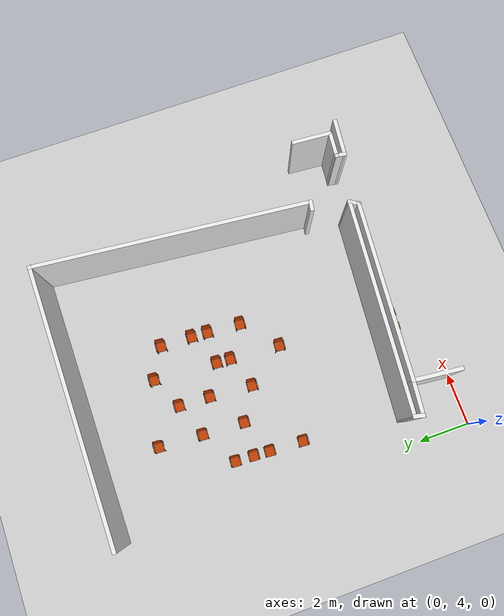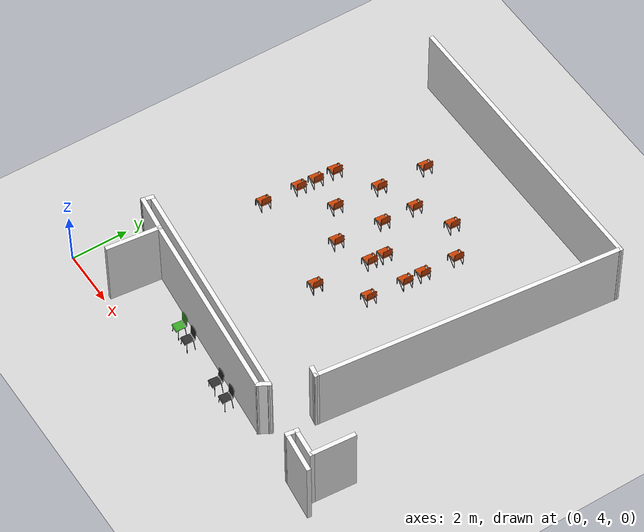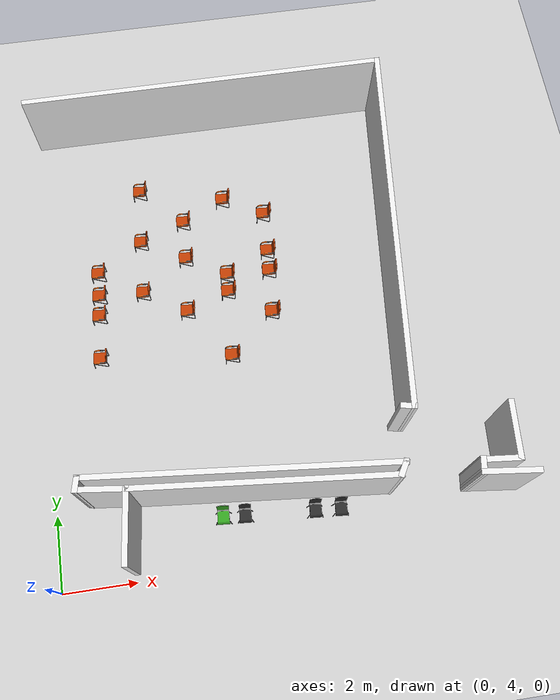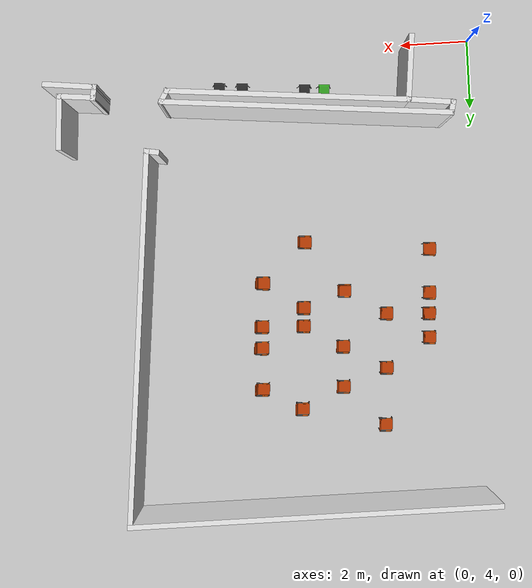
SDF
<sdf version="1.6">
 <world name="default">
  <model name="ground_plane">
   <static>1</static>
   <link name="link">
    <collision name="collision">
     <geometry><plane><normal>0 0 1</normal><size>100 100</size></plane></geometry>
     <surface><friction><ode><mu>100</mu><mu2>50</mu2></ode></friction></surface>
    </collision>
    <visual name="visual">
     <cast_shadows>0</cast_shadows>
     <geometry><plane><normal>0 0 1</normal><size>100 100</size></plane></geometry>
     <material>
      <script><uri>file://media/materials/scripts/gazebo.material</uri><name>Gazebo/Grey</name></script>
     </material>
    </visual>
   </link>
  </model>
  <model name="ucu_basic_frame.world">
   <link name="Wall_264">
    <pose>0.222214 2.68141 0 0 0 -1.79253</pose>
    <visual name="Wall_264_Visual">
     <pose>0 0 1.25 0 -0 0</pose>
     <geometry><box><size>0.445131 0.15 2.5</size></box></geometry>
     <material>
      <script><uri>file://media/materials/scripts/gazebo.material</uri><name>Gazebo/White</name></script>
      <ambient>1 1 1 1</ambient>
      <diffuse>1 1 1 1</diffuse>
      <specular>0 0 0 1</specular>
      <emissive>0 0 0 1</emissive>
     </material>
     <meta><layer>0</layer></meta>
    </visual>
    <collision name="Wall_264_Collision">
     <pose>0 0 1.25 0 -0 0</pose>
     <geometry><box><size>0.445131 0.15 2.5</size></box></geometry>
     <surface>
      <friction>
       <ode><mu>1</mu><mu2>1</mu2><fdir1>0 0 0</fdir1><slip1>0</slip1><slip2>0</slip2></ode>
       <torsional>
        <coefficient>1</coefficient>
        <patch_radius>0</patch_radius>
        <surface_radius>0</surface_radius>
        <use_patch_radius>1</use_patch_radius>
        <ode><slip>0</slip></ode>
       </torsional>
      </friction>
      <bounce><restitution_coefficient>0</restitution_coefficient><threshold>1e+06</threshold></bounce>
      <contact>
       <collide_without_contact>0</collide_without_contact>
       <collide_without_contact_bitmask>1</collide_without_contact_bitmask>
       <collide_bitmask>1</collide_bitmask>
       <ode>
        <soft_cfm>0</soft_cfm>
        <soft_erp>0.2</soft_erp>
        <kp>1e+13</kp>
        <kd>1</kd>
        <max_vel>0.01</max_vel>
        <min_depth>0</min_depth>
       </ode>
       <bullet>
        <split_impulse>1</split_impulse>
        <split_impulse_penetration_threshold>-0.01</split_impulse_penetration_threshold>
        <soft_cfm>0</soft_cfm>
        <soft_erp>0.2</soft_erp>
        <kp>1e+13</kp>
        <kd>1</kd>
       </bullet>
      </contact>
     </surface>
    </collision>
   </link>
   <link name="Wall_265">
    <pose>0.817825 2.46551 0 0 0 -0.1169</pose>
    <inertial>
     <mass>1</mass>
     <inertia><ixx>1</ixx><ixy>0</ixy><ixz>0</ixz><iyy>1</iyy><iyz>0</iyz><izz>1</izz></inertia>
    </inertial>
    <visual name="Wall_265_Visual">
     <pose>0 0 1.25 0 -0 0</pose>
     <geometry><box><size>1.38367 0.15 2.5</size></box></geometry>
     <material>
      <script><uri>file://media/materials/scripts/gazebo.material</uri><name>Gazebo/White</name></script>
      <ambient>1 1 1 1</ambient>
      <diffuse>1 1 1 1</diffuse>
      <specular>0 0 0 1</specular>
      <emissive>0 0 0 1</emissive>
      <shader type="vertex"><normal_map>__default__</normal_map></shader>
     </material>
     <meta><layer>0</layer></meta>
    </visual>
    <collision name="Wall_265_Collision">
     <pose>0 0 1.25 0 -0 0</pose>
     <geometry><box><size>1.38367 0.15 2.5</size></box></geometry>
     <surface>
      <friction>
       <ode><mu>1</mu><mu2>1</mu2><fdir1>0 0 0</fdir1><slip1>0</slip1><slip2>0</slip2></ode>
       <torsional>
        <coefficient>1</coefficient>
        <patch_radius>0</patch_radius>
        <surface_radius>0</surface_radius>
        <use_patch_radius>1</use_patch_radius>
        <ode><slip>0</slip></ode>
       </torsional>
      </friction>
      <bounce><restitution_coefficient>0</restitution_coefficient><threshold>1e+06</threshold></bounce>
      <contact>
       <collide_without_contact>0</collide_without_contact>
       <collide_without_contact_bitmask>1</collide_without_contact_bitmask>
       <collide_bitmask>1</collide_bitmask>
       <ode>
        <soft_cfm>0</soft_cfm>
        <soft_erp>0.2</soft_erp>
        <kp>1e+13</kp>
        <kd>1</kd>
        <max_vel>0.01</max_vel>
        <min_depth>0</min_depth>
       </ode>
       <bullet>
        <split_impulse>1</split_impulse>
        <split_impulse_penetration_threshold>-0.01</split_impulse_penetration_threshold>
        <soft_cfm>0</soft_cfm>
        <soft_erp>0.2</soft_erp>
        <kp>1e+13</kp>
        <kd>1</kd>
       </bullet>
      </contact>
     </surface>
    </collision>
   </link>
   <link name="Wall_267">
    <pose>4.30052 2.44738 0 0 0 -0.093156</pose>
    <visual name="Wall_267_Visual">
     <pose>0 0 1.25 0 -0 0</pose>
     <geometry><box><size>8.27695 0.15 2.5</size></box></geometry>
     <material>
      <script><uri>file://media/materials/scripts/gazebo.material</uri><name>Gazebo/White</name></script>
      <ambient>1 1 1 1</ambient>
      <diffuse>1 1 1 1</diffuse>
      <specular>0 0 0 1</specular>
      <emissive>0 0 0 1</emissive>
     </material>
     <meta><layer>0</layer></meta>
    </visual>
    <collision name="Wall_267_Collision">
     <pose>0 0 1.25 0 -0 0</pose>
     <geometry><box><size>8.27695 0.15 2.5</size></box></geometry>
     <surface>
      <friction>
       <ode><mu>1</mu><mu2>1</mu2><fdir1>0 0 0</fdir1><slip1>0</slip1><slip2>0</slip2></ode>
       <torsional>
        <coefficient>1</coefficient>
        <patch_radius>0</patch_radius>
        <surface_radius>0</surface_radius>
        <use_patch_radius>1</use_patch_radius>
        <ode><slip>0</slip></ode>
       </torsional>
      </friction>
      <bounce><restitution_coefficient>0</restitution_coefficient><threshold>1e+06</threshold></bounce>
      <contact>
       <collide_without_contact>0</collide_without_contact>
       <collide_without_contact_bitmask>1</collide_without_contact_bitmask>
       <collide_bitmask>1</collide_bitmask>
       <ode>
        <soft_cfm>0</soft_cfm>
        <soft_erp>0.2</soft_erp>
        <kp>1e+13</kp>
        <kd>1</kd>
        <max_vel>0.01</max_vel>
        <min_depth>0</min_depth>
       </ode>
       <bullet>
        <split_impulse>1</split_impulse>
        <split_impulse_penetration_threshold>-0.01</split_impulse_penetration_threshold>
        <soft_cfm>0</soft_cfm>
        <soft_erp>0.2</soft_erp>
        <kp>1e+13</kp>
        <kd>1</kd>
       </bullet>
      </contact>
     </surface>
    </collision>
   </link>
   <link name="Wall_268">
    <pose>8.26147 1.92273 0 0 0 -2.09559</pose>
    <visual name="Wall_268_Visual">
     <pose>0 0 1.25 0 -0 0</pose>
     <geometry><box><size>0.488919 0.15 2.5</size></box></geometry>
     <material>
      <script><uri>file://media/materials/scripts/gazebo.material</uri><name>Gazebo/White</name></script>
      <ambient>1 1 1 1</ambient>
      <diffuse>1 1 1 1</diffuse>
      <specular>0 0 0 1</specular>
      <emissive>0 0 0 1</emissive>
     </material>
     <meta><layer>0</layer></meta>
    </visual>
    <collision name="Wall_268_Collision">
     <pose>0 0 1.25 0 -0 0</pose>
     <geometry><box><size>0.488919 0.15 2.5</size></box></geometry>
     <surface>
      <friction>
       <ode><mu>1</mu><mu2>1</mu2><fdir1>0 0 0</fdir1><slip1>0</slip1><slip2>0</slip2></ode>
       <torsional>
        <coefficient>1</coefficient>
        <patch_radius>0</patch_radius>
        <surface_radius>0</surface_radius>
        <use_patch_radius>1</use_patch_radius>
        <ode><slip>0</slip></ode>
       </torsional>
      </friction>
      <bounce><restitution_coefficient>0</restitution_coefficient><threshold>1e+06</threshold></bounce>
      <contact>
       <collide_without_contact>0</collide_without_contact>
       <collide_without_contact_bitmask>1</collide_without_contact_bitmask>
       <collide_bitmask>1</collide_bitmask>
       <ode>
        <soft_cfm>0</soft_cfm>
        <soft_erp>0.2</soft_erp>
        <kp>1e+13</kp>
        <kd>1</kd>
        <max_vel>0.01</max_vel>
        <min_depth>0</min_depth>
       </ode>
       <bullet>
        <split_impulse>1</split_impulse>
        <split_impulse_penetration_threshold>-0.01</split_impulse_penetration_threshold>
        <soft_cfm>0</soft_cfm>
        <soft_erp>0.2</soft_erp>
        <kp>1e+13</kp>
        <kd>1</kd>
       </bullet>
      </contact>
     </surface>
    </collision>
   </link>
   <link name="Wall_269">
    <pose>4.80351 2.08482 0 0 -0 3.05031</pose>
    <visual name="Wall_269_Visual">
     <pose>0 0 1.25 0 -0 0</pose>
     <geometry><box><size>6.92432 0.15 2.5</size></box></geometry>
     <material>
      <script><uri>file://media/materials/scripts/gazebo.material</uri><name>Gazebo/White</name></script>
      <ambient>1 1 1 1</ambient>
      <diffuse>1 1 1 1</diffuse>
      <specular>0 0 0 1</specular>
      <emissive>0 0 0 1</emissive>
     </material>
     <meta><layer>0</layer></meta>
    </visual>
    <collision name="Wall_269_Collision">
     <pose>0 0 1.25 0 -0 0</pose>
     <geometry><box><size>6.92432 0.15 2.5</size></box></geometry>
     <surface>
      <friction>
       <ode><mu>1</mu><mu2>1</mu2><fdir1>0 0 0</fdir1><slip1>0</slip1><slip2>0</slip2></ode>
       <torsional>
        <coefficient>1</coefficient>
        <patch_radius>0</patch_radius>
        <surface_radius>0</surface_radius>
        <use_patch_radius>1</use_patch_radius>
        <ode><slip>0</slip></ode>
       </torsional>
      </friction>
      <bounce><restitution_coefficient>0</restitution_coefficient><threshold>1e+06</threshold></bounce>
      <contact>
       <collide_without_contact>0</collide_without_contact>
       <collide_without_contact_bitmask>1</collide_without_contact_bitmask>
       <collide_bitmask>1</collide_bitmask>
       <ode>
        <soft_cfm>0</soft_cfm>
        <soft_erp>0.2</soft_erp>
        <kp>1e+13</kp>
        <kd>1</kd>
        <max_vel>0.01</max_vel>
        <min_depth>0</min_depth>
       </ode>
       <bullet>
        <split_impulse>1</split_impulse>
        <split_impulse_penetration_threshold>-0.01</split_impulse_penetration_threshold>
        <soft_cfm>0</soft_cfm>
        <soft_erp>0.2</soft_erp>
        <kp>1e+13</kp>
        <kd>1</kd>
       </bullet>
      </contact>
     </surface>
    </collision>
   </link>
   <link name="Wall_272">
    <pose>1.33783 1.51364 0 0 0 -1.67567</pose>
    <visual name="Wall_272_Visual">
     <pose>0 0 1.25 0 -0 0</pose>
     <geometry><box><size>1.91958 0.15 2.5</size></box></geometry>
     <material>
      <script><uri>file://media/materials/scripts/gazebo.material</uri><name>Gazebo/White</name></script>
      <ambient>1 1 1 1</ambient>
      <diffuse>1 1 1 1</diffuse>
      <specular>0 0 0 1</specular>
      <emissive>0 0 0 1</emissive>
     </material>
     <meta><layer>0</layer></meta>
    </visual>
    <collision name="Wall_272_Collision">
     <pose>0 0 1.25 0 -0 0</pose>
     <geometry><box><size>1.91958 0.15 2.5</size></box></geometry>
     <surface>
      <friction>
       <ode><mu>1</mu><mu2>1</mu2><fdir1>0 0 0</fdir1><slip1>0</slip1><slip2>0</slip2></ode>
       <torsional>
        <coefficient>1</coefficient>
        <patch_radius>0</patch_radius>
        <surface_radius>0</surface_radius>
        <use_patch_radius>1</use_patch_radius>
        <ode><slip>0</slip></ode>
       </torsional>
      </friction>
      <bounce><restitution_coefficient>0</restitution_coefficient><threshold>1e+06</threshold></bounce>
      <contact>
       <collide_without_contact>0</collide_without_contact>
       <collide_without_contact_bitmask>1</collide_without_contact_bitmask>
       <collide_bitmask>1</collide_bitmask>
       <ode>
        <soft_cfm>0</soft_cfm>
        <soft_erp>0.2</soft_erp>
        <kp>1e+13</kp>
        <kd>1</kd>
        <max_vel>0.01</max_vel>
        <min_depth>0</min_depth>
       </ode>
       <bullet>
        <split_impulse>1</split_impulse>
        <split_impulse_penetration_threshold>-0.01</split_impulse_penetration_threshold>
        <soft_cfm>0</soft_cfm>
        <soft_erp>0.2</soft_erp>
        <kp>1e+13</kp>
        <kd>1</kd>
       </bullet>
      </contact>
     </surface>
    </collision>
   </link>
   <link name="Wall_309">
    <pose>10.8836 1.47565 0 0 -0 3.03093</pose>
    <visual name="Wall_309_Visual">
     <pose>0 0 1.25 0 -0 0</pose>
     <geometry><box><size>1.52674 0.15 2.5</size></box></geometry>
     <material>
      <script><uri>file://media/materials/scripts/gazebo.material</uri><name>Gazebo/White</name></script>
      <ambient>1 1 1 1</ambient>
      <diffuse>1 1 1 1</diffuse>
      <specular>0 0 0 1</specular>
      <emissive>0 0 0 1</emissive>
     </material>
     <meta><layer>0</layer></meta>
    </visual>
    <collision name="Wall_309_Collision">
     <pose>0 0 1.25 0 -0 0</pose>
     <geometry><box><size>1.52674 0.15 2.5</size></box></geometry>
     <surface>
      <friction>
       <ode><mu>1</mu><mu2>1</mu2><fdir1>0 0 0</fdir1><slip1>0</slip1><slip2>0</slip2></ode>
       <torsional>
        <coefficient>1</coefficient>
        <patch_radius>0</patch_radius>
        <surface_radius>0</surface_radius>
        <use_patch_radius>1</use_patch_radius>
        <ode><slip>0</slip></ode>
       </torsional>
      </friction>
      <bounce><restitution_coefficient>0</restitution_coefficient><threshold>1e+06</threshold></bounce>
      <contact>
       <collide_without_contact>0</collide_without_contact>
       <collide_without_contact_bitmask>1</collide_without_contact_bitmask>
       <collide_bitmask>1</collide_bitmask>
       <ode>
        <soft_cfm>0</soft_cfm>
        <soft_erp>0.2</soft_erp>
        <kp>1e+13</kp>
        <kd>1</kd>
        <max_vel>0.01</max_vel>
        <min_depth>0</min_depth>
       </ode>
       <bullet>
        <split_impulse>1</split_impulse>
        <split_impulse_penetration_threshold>-0.01</split_impulse_penetration_threshold>
        <soft_cfm>0</soft_cfm>
        <soft_erp>0.2</soft_erp>
        <kp>1e+13</kp>
        <kd>1</kd>
       </bullet>
      </contact>
     </surface>
    </collision>
   </link>
   <link name="Wall_310">
    <pose>10.2225 1.70746 0 0 -0 1.42134</pose>
    <visual name="Wall_310_Visual">
     <pose>0 0 1.25 0 -0 0</pose>
     <geometry><box><size>0.465001 0.15 2.5</size></box></geometry>
     <material>
      <script><uri>file://media/materials/scripts/gazebo.material</uri><name>Gazebo/White</name></script>
      <ambient>1 1 1 1</ambient>
      <diffuse>1 1 1 1</diffuse>
      <specular>0 0 0 1</specular>
      <emissive>0 0 0 1</emissive>
     </material>
     <meta><layer>0</layer></meta>
    </visual>
    <collision name="Wall_310_Collision">
     <pose>0 0 1.25 0 -0 0</pose>
     <geometry><box><size>0.465001 0.15 2.5</size></box></geometry>
     <surface>
      <friction>
       <ode><mu>1</mu><mu2>1</mu2><fdir1>0 0 0</fdir1><slip1>0</slip1><slip2>0</slip2></ode>
       <torsional>
        <coefficient>1</coefficient>
        <patch_radius>0</patch_radius>
        <surface_radius>0</surface_radius>
        <use_patch_radius>1</use_patch_radius>
        <ode><slip>0</slip></ode>
       </torsional>
      </friction>
      <bounce><restitution_coefficient>0</restitution_coefficient><threshold>1e+06</threshold></bounce>
      <contact>
       <collide_without_contact>0</collide_without_contact>
       <collide_without_contact_bitmask>1</collide_without_contact_bitmask>
       <collide_bitmask>1</collide_bitmask>
       <ode>
        <soft_cfm>0</soft_cfm>
        <soft_erp>0.2</soft_erp>
        <kp>1e+13</kp>
        <kd>1</kd>
        <max_vel>0.01</max_vel>
        <min_depth>0</min_depth>
       </ode>
       <bullet>
        <split_impulse>1</split_impulse>
        <split_impulse_penetration_threshold>-0.01</split_impulse_penetration_threshold>
        <soft_cfm>0</soft_cfm>
        <soft_erp>0.2</soft_erp>
        <kp>1e+13</kp>
        <kd>1</kd>
       </bullet>
      </contact>
     </surface>
    </collision>
   </link>
   <link name="Wall_311">
    <pose>10.7146 1.80243 0 0 0 -0.093477</pose>
    <visual name="Wall_311_Visual">
     <pose>0 0 1.25 0 -0 0</pose>
     <geometry><box><size>1.0913 0.15 2.5</size></box></geometry>
     <material>
      <script><uri>file://media/materials/scripts/gazebo.material</uri><name>Gazebo/White</name></script>
      <ambient>1 1 1 1</ambient>
      <diffuse>1 1 1 1</diffuse>
      <specular>0 0 0 1</specular>
      <emissive>0 0 0 1</emissive>
     </material>
     <meta><layer>0</layer></meta>
    </visual>
    <collision name="Wall_311_Collision">
     <pose>0 0 1.25 0 -0 0</pose>
     <geometry><box><size>1.0913 0.15 2.5</size></box></geometry>
     <surface>
      <friction>
       <ode><mu>1</mu><mu2>1</mu2><fdir1>0 0 0</fdir1><slip1>0</slip1><slip2>0</slip2></ode>
       <torsional>
        <coefficient>1</coefficient>
        <patch_radius>0</patch_radius>
        <surface_radius>0</surface_radius>
        <use_patch_radius>1</use_patch_radius>
        <ode><slip>0</slip></ode>
       </torsional>
      </friction>
      <bounce><restitution_coefficient>0</restitution_coefficient><threshold>1e+06</threshold></bounce>
      <contact>
       <collide_without_contact>0</collide_without_contact>
       <collide_without_contact_bitmask>1</collide_without_contact_bitmask>
       <collide_bitmask>1</collide_bitmask>
       <ode>
        <soft_cfm>0</soft_cfm>
        <soft_erp>0.2</soft_erp>
        <kp>1e+13</kp>
        <kd>1</kd>
        <max_vel>0.01</max_vel>
        <min_depth>0</min_depth>
       </ode>
       <bullet>
        <split_impulse>1</split_impulse>
        <split_impulse_penetration_threshold>-0.01</split_impulse_penetration_threshold>
        <soft_cfm>0</soft_cfm>
        <soft_erp>0.2</soft_erp>
        <kp>1e+13</kp>
        <kd>1</kd>
       </bullet>
      </contact>
     </surface>
    </collision>
   </link>
   <link name="Wall_313">
    <pose>11.2333 2.47933 0 0 -0 1.49967</pose>
    <visual name="Wall_313_Visual">
     <pose>0 0 1.25 0 -0 0</pose>
     <geometry><box><size>1.56155 0.15 2.5</size></box></geometry>
     <material>
      <script><uri>file://media/materials/scripts/gazebo.material</uri><name>Gazebo/White</name></script>
      <ambient>1 1 1 1</ambient>
      <diffuse>1 1 1 1</diffuse>
      <specular>0 0 0 1</specular>
      <emissive>0 0 0 1</emissive>
     </material>
     <meta><layer>0</layer></meta>
    </visual>
    <collision name="Wall_313_Collision">
     <pose>0 0 1.25 0 -0 0</pose>
     <geometry><box><size>1.56155 0.15 2.5</size></box></geometry>
     <surface>
      <friction>
       <ode><mu>1</mu><mu2>1</mu2><fdir1>0 0 0</fdir1><slip1>0</slip1><slip2>0</slip2></ode>
       <torsional>
        <coefficient>1</coefficient>
        <patch_radius>0</patch_radius>
        <surface_radius>0</surface_radius>
        <use_patch_radius>1</use_patch_radius>
        <ode><slip>0</slip></ode>
       </torsional>
      </friction>
      <bounce><restitution_coefficient>0</restitution_coefficient><threshold>1e+06</threshold></bounce>
      <contact>
       <collide_without_contact>0</collide_without_contact>
       <collide_without_contact_bitmask>1</collide_without_contact_bitmask>
       <collide_bitmask>1</collide_bitmask>
       <ode>
        <soft_cfm>0</soft_cfm>
        <soft_erp>0.2</soft_erp>
        <kp>1e+13</kp>
        <kd>1</kd>
        <max_vel>0.01</max_vel>
        <min_depth>0</min_depth>
       </ode>
       <bullet>
        <split_impulse>1</split_impulse>
        <split_impulse_penetration_threshold>-0.01</split_impulse_penetration_threshold>
        <soft_cfm>0</soft_cfm>
        <soft_erp>0.2</soft_erp>
        <kp>1e+13</kp>
        <kd>1</kd>
       </bullet>
      </contact>
     </surface>
    </collision>
   </link>
   <link name="Wall_320">
    <pose>4.68498 13.9093 0 0 -0 0.000568</pose>
    <visual name="Wall_320_Visual">
     <pose>0 0 1.25 0 -0 0</pose>
     <geometry><box><size>10.5597 0.15 2.5</size></box></geometry>
     <material>
      <script><uri>file://media/materials/scripts/gazebo.material</uri><name>Gazebo/White</name></script>
      <ambient>1 1 1 1</ambient>
      <diffuse>1 1 1 1</diffuse>
      <specular>0 0 0 1</specular>
      <emissive>0 0 0 1</emissive>
     </material>
     <meta><layer>0</layer></meta>
    </visual>
    <collision name="Wall_320_Collision">
     <pose>0 0 1.25 0 -0 0</pose>
     <geometry><box><size>10.5597 0.15 2.5</size></box></geometry>
     <surface>
      <friction>
       <ode><mu>1</mu><mu2>1</mu2><fdir1>0 0 0</fdir1><slip1>0</slip1><slip2>0</slip2></ode>
       <torsional>
        <coefficient>1</coefficient>
        <patch_radius>0</patch_radius>
        <surface_radius>0</surface_radius>
        <use_patch_radius>1</use_patch_radius>
        <ode><slip>0</slip></ode>
       </torsional>
      </friction>
      <bounce><restitution_coefficient>0</restitution_coefficient><threshold>1e+06</threshold></bounce>
      <contact>
       <collide_without_contact>0</collide_without_contact>
       <collide_without_contact_bitmask>1</collide_without_contact_bitmask>
       <collide_bitmask>1</collide_bitmask>
       <ode>
        <soft_cfm>0</soft_cfm>
        <soft_erp>0.2</soft_erp>
        <kp>1e+13</kp>
        <kd>1</kd>
        <max_vel>0.01</max_vel>
        <min_depth>0</min_depth>
       </ode>
       <bullet>
        <split_impulse>1</split_impulse>
        <split_impulse_penetration_threshold>-0.01</split_impulse_penetration_threshold>
        <soft_cfm>0</soft_cfm>
        <soft_erp>0.2</soft_erp>
        <kp>1e+13</kp>
        <kd>1</kd>
       </bullet>
      </contact>
     </surface>
    </collision>
   </link>
   <link name="Wall_323">
    <pose>8.69612 3.45178 0 0 0 -0.166846</pose>
    <visual name="Wall_323_Visual">
     <pose>0 0 1.25 0 -0 0</pose>
     <geometry><box><size>0.432266 0.15 2.5</size></box></geometry>
     <material>
      <script><uri>file://media/materials/scripts/gazebo.material</uri><name>Gazebo/White</name></script>
      <ambient>1 1 1 1</ambient>
      <diffuse>1 1 1 1</diffuse>
      <specular>0 0 0 1</specular>
      <emissive>0 0 0 1</emissive>
     </material>
     <meta><layer>0</layer></meta>
    </visual>
    <collision name="Wall_323_Collision">
     <pose>0 0 1.25 0 -0 0</pose>
     <geometry><box><size>0.432266 0.15 2.5</size></box></geometry>
     <surface>
      <friction>
       <ode><mu>1</mu><mu2>1</mu2><fdir1>0 0 0</fdir1><slip1>0</slip1><slip2>0</slip2></ode>
       <torsional>
        <coefficient>1</coefficient>
        <patch_radius>0</patch_radius>
        <surface_radius>0</surface_radius>
        <use_patch_radius>1</use_patch_radius>
        <ode><slip>0</slip></ode>
       </torsional>
      </friction>
      <bounce><restitution_coefficient>0</restitution_coefficient><threshold>1e+06</threshold></bounce>
      <contact>
       <collide_without_contact>0</collide_without_contact>
       <collide_without_contact_bitmask>1</collide_without_contact_bitmask>
       <collide_bitmask>1</collide_bitmask>
       <ode>
        <soft_cfm>0</soft_cfm>
        <soft_erp>0.2</soft_erp>
        <kp>1e+13</kp>
        <kd>1</kd>
        <max_vel>0.01</max_vel>
        <min_depth>0</min_depth>
       </ode>
       <bullet>
        <split_impulse>1</split_impulse>
        <split_impulse_penetration_threshold>-0.01</split_impulse_penetration_threshold>
        <soft_cfm>0</soft_cfm>
        <soft_erp>0.2</soft_erp>
        <kp>1e+13</kp>
        <kd>1</kd>
       </bullet>
      </contact>
     </surface>
    </collision>
   </link>
   <link name="Wall_326">
    <pose>9.36257 8.67029 0 0 0 -1.67105</pose>
    <visual name="Wall_326_Visual">
     <pose>0 0 1.25 0 -0 0</pose>
     <geometry><box><size>10.6868 0.15 2.5</size></box></geometry>
     <material>
      <script><uri>file://media/materials/scripts/gazebo.material</uri><name>Gazebo/White</name></script>
      <ambient>1 1 1 1</ambient>
      <diffuse>1 1 1 1</diffuse>
      <specular>0 0 0 1</specular>
      <emissive>0 0 0 1</emissive>
     </material>
     <meta><layer>0</layer></meta>
    </visual>
    <collision name="Wall_326_Collision">
     <pose>0 0 1.25 0 -0 0</pose>
     <geometry><box><size>10.6868 0.15 2.5</size></box></geometry>
     <surface>
      <friction>
       <ode><mu>1</mu><mu2>1</mu2><fdir1>0 0 0</fdir1><slip1>0</slip1><slip2>0</slip2></ode>
       <torsional>
        <coefficient>1</coefficient>
        <patch_radius>0</patch_radius>
        <surface_radius>0</surface_radius>
        <use_patch_radius>1</use_patch_radius>
        <ode><slip>0</slip></ode>
       </torsional>
      </friction>
      <bounce><restitution_coefficient>0</restitution_coefficient><threshold>1e+06</threshold></bounce>
      <contact>
       <collide_without_contact>0</collide_without_contact>
       <collide_without_contact_bitmask>1</collide_without_contact_bitmask>
       <collide_bitmask>1</collide_bitmask>
       <ode>
        <soft_cfm>0</soft_cfm>
        <soft_erp>0.2</soft_erp>
        <kp>1e+13</kp>
        <kd>1</kd>
        <max_vel>0.01</max_vel>
        <min_depth>0</min_depth>
       </ode>
       <bullet>
        <split_impulse>1</split_impulse>
        <split_impulse_penetration_threshold>-0.01</split_impulse_penetration_threshold>
        <soft_cfm>0</soft_cfm>
        <soft_erp>0.2</soft_erp>
        <kp>1e+13</kp>
        <kd>1</kd>
       </bullet>
      </contact>
     </surface>
    </collision>
   </link>
   <static>1</static>
   <pose>0.7577 3.6363 0 0 -0 0</pose>
  </model>
  <model name="classroom_chair_015_1_2">
   <pose>4.42007 5.31996 0.445359 1.3e-05 0.000121 -0.070166</pose>
   <static>0</static>
   <link name="model_body">
    <visual name="visual">
     <geometry>
      <mesh>
       <uri>model://robert_gazebo/meshes/classroom_chair_green_visual.dae</uri>
       <scale>100 100 100</scale>
      </mesh>
     </geometry>
    </visual>
    <collision name="collision">
     <geometry>
      <mesh><uri>model://robert_gazebo/meshes/classroom_chair_collision.dae</uri><scale>1 1 1</scale></mesh>
     </geometry>
    </collision>
    <inertial>
     <inertia><ixx>0.34</ixx><ixy>0</ixy><ixz>0</ixz><iyy>0.34</iyy><iyz>0</iyz><izz>0.18</izz></inertia>
     <mass>5</mass>
    </inertial>
   </link>
  </model>
  <model name="classroom_chair_015_1_3">
   <pose>5.00007 5.27998 0.445361 7e-06 0.000128 -0.070095</pose>
   <static>0</static>
   <link name="model_body">
    <visual name="visual">
     <geometry>
      <mesh><uri>model://robert_gazebo/meshes/classroom_chair_grey_visual.dae</uri><scale>100 100 100</scale></mesh>
     </geometry>
    </visual>
    <collision name="collision">
     <geometry>
      <mesh><uri>model://robert_gazebo/meshes/classroom_chair_collision.dae</uri><scale>1 1 1</scale></mesh>
     </geometry>
    </collision>
    <inertial>
     <inertia><ixx>0.34</ixx><ixy>0</ixy><ixz>0</ixz><iyy>0.34</iyy><iyz>0</iyz><izz>0.18</izz></inertia>
     <mass>5</mass>
    </inertial>
   </link>
  </model>
  <model name="classroom_chair_015_2_1">
   <pose>6.86008 5.14996 0.445361 7e-06 0.000129 -0.070169</pose>
   <static>0</static>
   <link name="model_body">
    <visual name="visual">
     <geometry>
      <mesh><uri>model://robert_gazebo/meshes/classroom_chair_grey_visual.dae</uri><scale>100 100 100</scale></mesh>
     </geometry>
    </visual>
    <collision name="collision">
     <geometry>
      <mesh><uri>model://robert_gazebo/meshes/classroom_chair_collision.dae</uri><scale>1 1 1</scale></mesh>
     </geometry>
    </collision>
    <inertial>
     <inertia><ixx>0.34</ixx><ixy>0</ixy><ixz>0</ixz><iyy>0.34</iyy><iyz>0</iyz><izz>0.18</izz></inertia>
     <mass>5</mass>
    </inertial>
   </link>
  </model>
  <model name="classroom_chair_015_2_2">
   <pose>7.54008 5.09996 0.445361 7e-06 0.000129 -0.070169</pose>
   <static>0</static>
   <link name="model_body">
    <visual name="visual">
     <geometry>
      <mesh><uri>model://robert_gazebo/meshes/classroom_chair_grey_visual.dae</uri><scale>100 100 100</scale></mesh>
     </geometry>
    </visual>
    <collision name="collision">
     <geometry>
      <mesh><uri>model://robert_gazebo/meshes/classroom_chair_collision.dae</uri><scale>1 1 1</scale></mesh>
     </geometry>
    </collision>
    <inertial>
     <inertia><ixx>0.34</ixx><ixy>0</ixy><ixz>0</ixz><iyy>0.34</iyy><iyz>0</iyz><izz>0.18</izz></inertia>
     <mass>5</mass>
    </inertial>
   </link>
  </model>
  <model name="lect_chair_orange_clone_2">
   <pose>1.58355 10.2041 0.37783 0.000123 -0.00123 3.07086</pose>
   <static>0</static>
   <link name="model_body">
    <visual name="visual">
     <geometry>
      <mesh><uri>model://robert_gazebo/meshes/lectorium_chair_visual_orange.dae</uri><scale>1 1 1</scale></mesh>
     </geometry>
    </visual>
    <collision name="collision">
     <geometry>
      <mesh><uri>model://robert_gazebo/meshes/lectorium_chair_collision.dae</uri><scale>1 1 1</scale></mesh>
     </geometry>
    </collision>
    <inertial>
     <inertia><ixx>0.53</ixx><ixy>0</ixy><ixz>0</ixz><iyy>0.54</iyy><iyz>0</iyz><izz>0.28</izz></inertia>
     <mass>8</mass>
    </inertial>
   </link>
  </model>
  <model name="lect_chair_orange_clone_3">
   <pose>1.65327 11.5083 0.37783 0.000123 -0.00123 3.07086</pose>
   <static>0</static>
   <link name="model_body">
    <visual name="visual">
     <geometry>
      <mesh><uri>model://robert_gazebo/meshes/lectorium_chair_visual_orange.dae</uri><scale>1 1 1</scale></mesh>
     </geometry>
    </visual>
    <collision name="collision">
     <geometry>
      <mesh><uri>model://robert_gazebo/meshes/lectorium_chair_collision.dae</uri><scale>1 1 1</scale></mesh>
     </geometry>
    </collision>
    <inertial>
     <inertia><ixx>0.53</ixx><ixy>0</ixy><ixz>0</ixz><iyy>0.54</iyy><iyz>0</iyz><izz>0.28</izz></inertia>
     <mass>8</mass>
    </inertial>
   </link>
  </model>
  <model name="lect_chair_orange_clone_4">
   <pose>1.69932 12.1276 0.37783 0.000123 -0.00123 3.07086</pose>
   <static>0</static>
   <link name="model_body">
    <visual name="visual">
     <geometry>
      <mesh><uri>model://robert_gazebo/meshes/lectorium_chair_visual_orange.dae</uri><scale>1 1 1</scale></mesh>
     </geometry>
    </visual>
    <collision name="collision">
     <geometry>
      <mesh><uri>model://robert_gazebo/meshes/lectorium_chair_collision.dae</uri><scale>1 1 1</scale></mesh>
     </geometry>
    </collision>
    <inertial>
     <inertia><ixx>0.53</ixx><ixy>0</ixy><ixz>0</ixz><iyy>0.54</iyy><iyz>0</iyz><izz>0.28</izz></inertia>
     <mass>8</mass>
    </inertial>
   </link>
  </model>
  <model name="lect_chair_orange_clone_5">
   <pose>1.72721 12.8434 0.37783 0.000123 -0.00123 3.07086</pose>
   <static>0</static>
   <link name="model_body">
    <visual name="visual">
     <geometry>
      <mesh><uri>model://robert_gazebo/meshes/lectorium_chair_visual_orange.dae</uri><scale>1 1 1</scale></mesh>
     </geometry>
    </visual>
    <collision name="collision">
     <geometry>
      <mesh><uri>model://robert_gazebo/meshes/lectorium_chair_collision.dae</uri><scale>1 1 1</scale></mesh>
     </geometry>
    </collision>
    <inertial>
     <inertia><ixx>0.53</ixx><ixy>0</ixy><ixz>0</ixz><iyy>0.54</iyy><iyz>0</iyz><izz>0.28</izz></inertia>
     <mass>8</mass>
    </inertial>
   </link>
  </model>
  <model name="lect_chair_orange_clone_2_clone">
   <pose>2.97595 12.0598 0.37783 0.000123 -0.00123 3.07086</pose>
   <static>0</static>
   <link name="model_body">
    <visual name="visual">
     <geometry>
      <mesh><uri>model://robert_gazebo/meshes/lectorium_chair_visual_orange.dae</uri><scale>1 1 1</scale></mesh>
     </geometry>
    </visual>
    <collision name="collision">
     <geometry>
      <mesh><uri>model://robert_gazebo/meshes/lectorium_chair_collision.dae</uri><scale>1 1 1</scale></mesh>
     </geometry>
    </collision>
    <inertial>
     <inertia><ixx>0.53</ixx><ixy>0</ixy><ixz>0</ixz><iyy>0.54</iyy><iyz>0</iyz><izz>0.28</izz></inertia>
     <mass>8</mass>
    </inertial>
   </link>
  </model>
  <model name="lect_chair_orange_clone_2_clone_0">
   <pose>3.06342 13.683 0.37783 0.000123 -0.00123 3.07086</pose>
   <static>0</static>
   <link name="model_body">
    <visual name="visual">
     <geometry>
      <mesh><uri>model://robert_gazebo/meshes/lectorium_chair_visual_orange.dae</uri><scale>1 1 1</scale></mesh>
     </geometry>
    </visual>
    <collision name="collision">
     <geometry>
      <mesh><uri>model://robert_gazebo/meshes/lectorium_chair_collision.dae</uri><scale>1 1 1</scale></mesh>
     </geometry>
    </collision>
    <inertial>
     <inertia><ixx>0.53</ixx><ixy>0</ixy><ixz>0</ixz><iyy>0.54</iyy><iyz>0</iyz><izz>0.28</izz></inertia>
     <mass>8</mass>
    </inertial>
   </link>
  </model>
  <model name="lect_chair_orange_clone_2_clone_0_clone">
   <pose>3.18063 15.3787 0.37783 0.000123 -0.00123 3.07086</pose>
   <static>0</static>
   <link name="model_body">
    <visual name="visual">
     <geometry>
      <mesh><uri>model://robert_gazebo/meshes/lectorium_chair_visual_orange.dae</uri><scale>1 1 1</scale></mesh>
     </geometry>
    </visual>
    <collision name="collision">
     <geometry>
      <mesh><uri>model://robert_gazebo/meshes/lectorium_chair_collision.dae</uri><scale>1 1 1</scale></mesh>
     </geometry>
    </collision>
    <inertial>
     <inertia><ixx>0.53</ixx><ixy>0</ixy><ixz>0</ixz><iyy>0.54</iyy><iyz>0</iyz><izz>0.28</izz></inertia>
     <mass>8</mass>
    </inertial>
   </link>
  </model>
  <model name="lect_chair_orange_clone_2_clone_0_clone_0">
   <pose>4.1962 11.3084 0.37783 0.000123 -0.00123 3.07086</pose>
   <static>0</static>
   <link name="model_body">
    <visual name="visual">
     <geometry>
      <mesh><uri>model://robert_gazebo/meshes/lectorium_chair_visual_orange.dae</uri><scale>1 1 1</scale></mesh>
     </geometry>
    </visual>
    <collision name="collision">
     <geometry>
      <mesh><uri>model://robert_gazebo/meshes/lectorium_chair_collision.dae</uri><scale>1 1 1</scale></mesh>
     </geometry>
    </collision>
    <inertial>
     <inertia><ixx>0.53</ixx><ixy>0</ixy><ixz>0</ixz><iyy>0.54</iyy><iyz>0</iyz><izz>0.28</izz></inertia>
     <mass>8</mass>
    </inertial>
   </link>
  </model>
  <model name="lect_chair_orange_clone_2_clone_0_clone_1">
   <pose>4.32701 12.9769 0.37783 0.000123 -0.00123 3.07086</pose>
   <static>0</static>
   <link name="model_body">
    <visual name="visual">
     <geometry>
      <mesh><uri>model://robert_gazebo/meshes/lectorium_chair_visual_orange.dae</uri><scale>1 1 1</scale></mesh>
     </geometry>
    </visual>
    <collision name="collision">
     <geometry>
      <mesh><uri>model://robert_gazebo/meshes/lectorium_chair_collision.dae</uri><scale>1 1 1</scale></mesh>
     </geometry>
    </collision>
    <inertial>
     <inertia><ixx>0.53</ixx><ixy>0</ixy><ixz>0</ixz><iyy>0.54</iyy><iyz>0</iyz><izz>0.28</izz></inertia>
     <mass>8</mass>
    </inertial>
   </link>
  </model>
  <model name="lect_chair_orange_clone_2_clone_0_clone_2">
   <pose>4.38028 14.1793 0.37783 0.000123 -0.00123 3.07086</pose>
   <static>0</static>
   <link name="model_body">
    <visual name="visual">
     <geometry>
      <mesh><uri>model://robert_gazebo/meshes/lectorium_chair_visual_orange.dae</uri><scale>1 1 1</scale></mesh>
     </geometry>
    </visual>
    <collision name="collision">
     <geometry>
      <mesh><uri>model://robert_gazebo/meshes/lectorium_chair_collision.dae</uri><scale>1 1 1</scale></mesh>
     </geometry>
    </collision>
    <inertial>
     <inertia><ixx>0.53</ixx><ixy>0</ixy><ixz>0</ixz><iyy>0.54</iyy><iyz>0</iyz><izz>0.28</izz></inertia>
     <mass>8</mass>
    </inertial>
   </link>
  </model>
  <model name="lect_chair_orange_clone_2_clone_0_clone_1_clone">
   <pose>5.44034 11.758 0.37783 0.000123 -0.00123 3.07086</pose>
   <static>0</static>
   <link name="model_body">
    <visual name="visual">
     <geometry>
      <mesh><uri>model://robert_gazebo/meshes/lectorium_chair_visual_orange.dae</uri><scale>1 1 1</scale></mesh>
     </geometry>
    </visual>
    <collision name="collision">
     <geometry>
      <mesh><uri>model://robert_gazebo/meshes/lectorium_chair_collision.dae</uri><scale>1 1 1</scale></mesh>
     </geometry>
    </collision>
    <inertial>
     <inertia><ixx>0.53</ixx><ixy>0</ixy><ixz>0</ixz><iyy>0.54</iyy><iyz>0</iyz><izz>0.28</izz></inertia>
     <mass>8</mass>
    </inertial>
   </link>
  </model>
  <model name="lect_chair_orange_clone_2_clone_0_clone_1_clone_0">
   <pose>5.30287 9.79544 0.37783 0.000123 -0.00123 3.07086</pose>
   <static>0</static>
   <link name="model_body">
    <visual name="visual">
     <geometry>
      <mesh><uri>model://robert_gazebo/meshes/lectorium_chair_visual_orange.dae</uri><scale>1 1 1</scale></mesh>
     </geometry>
    </visual>
    <collision name="collision">
     <geometry>
      <mesh><uri>model://robert_gazebo/meshes/lectorium_chair_collision.dae</uri><scale>1 1 1</scale></mesh>
     </geometry>
    </collision>
    <inertial>
     <inertia><ixx>0.53</ixx><ixy>0</ixy><ixz>0</ixz><iyy>0.54</iyy><iyz>0</iyz><izz>0.28</izz></inertia>
     <mass>8</mass>
    </inertial>
   </link>
  </model>
  <model name="lect_chair_orange_clone_2_clone_0_clone_1_clone_1">
   <pose>5.47476 12.3015 0.37783 0.000123 -0.00123 3.07086</pose>
   <static>0</static>
   <link name="model_body">
    <visual name="visual">
     <geometry>
      <mesh><uri>model://robert_gazebo/meshes/lectorium_chair_visual_orange.dae</uri><scale>1 1 1</scale></mesh>
     </geometry>
    </visual>
    <collision name="collision">
     <geometry>
      <mesh><uri>model://robert_gazebo/meshes/lectorium_chair_collision.dae</uri><scale>1 1 1</scale></mesh>
     </geometry>
    </collision>
    <inertial>
     <inertia><ixx>0.53</ixx><ixy>0</ixy><ixz>0</ixz><iyy>0.54</iyy><iyz>0</iyz><izz>0.28</izz></inertia>
     <mass>8</mass>
    </inertial>
   </link>
  </model>
  <model name="lect_chair_orange_clone_2_clone_0_clone_1_clone_2">
   <pose>5.64229 14.7762 0.37783 0.000123 -0.00123 3.07086</pose>
   <static>0</static>
   <link name="model_body">
    <visual name="visual">
     <geometry>
      <mesh><uri>model://robert_gazebo/meshes/lectorium_chair_visual_orange.dae</uri><scale>1 1 1</scale></mesh>
     </geometry>
    </visual>
    <collision name="collision">
     <geometry>
      <mesh><uri>model://robert_gazebo/meshes/lectorium_chair_collision.dae</uri><scale>1 1 1</scale></mesh>
     </geometry>
    </collision>
    <inertial>
     <inertia><ixx>0.53</ixx><ixy>0</ixy><ixz>0</ixz><iyy>0.54</iyy><iyz>0</iyz><izz>0.28</izz></inertia>
     <mass>8</mass>
    </inertial>
   </link>
  </model>
  <model name="lect_chair_orange_clone_2_clone_0_clone_1_clone_2_clone">
   <pose>6.80481 14.1275 0.37783 0.000123 -0.00123 3.07086</pose>
   <static>0</static>
   <link name="model_body">
    <visual name="visual">
     <geometry>
      <mesh><uri>model://robert_gazebo/meshes/lectorium_chair_visual_orange.dae</uri><scale>1 1 1</scale></mesh>
     </geometry>
    </visual>
    <collision name="collision">
     <geometry>
      <mesh><uri>model://robert_gazebo/meshes/lectorium_chair_collision.dae</uri><scale>1 1 1</scale></mesh>
     </geometry>
    </collision>
    <inertial>
     <inertia><ixx>0.53</ixx><ixy>0</ixy><ixz>0</ixz><iyy>0.54</iyy><iyz>0</iyz><izz>0.28</izz></inertia>
     <mass>8</mass>
    </inertial>
   </link>
  </model>
  <model name="lect_chair_orange_clone_2_clone_0_clone_1_clone_2_clone_0">
   <pose>6.75967 12.8942 0.37783 0.000123 -0.00123 3.07086</pose>
   <static>0</static>
   <link name="model_body">
    <visual name="visual">
     <geometry>
      <mesh><uri>model://robert_gazebo/meshes/lectorium_chair_visual_orange.dae</uri><scale>1 1 1</scale></mesh>
     </geometry>
    </visual>
    <collision name="collision">
     <geometry>
      <mesh><uri>model://robert_gazebo/meshes/lectorium_chair_collision.dae</uri><scale>1 1 1</scale></mesh>
     </geometry>
    </collision>
    <inertial>
     <inertia><ixx>0.53</ixx><ixy>0</ixy><ixz>0</ixz><iyy>0.54</iyy><iyz>0</iyz><izz>0.28</izz></inertia>
     <mass>8</mass>
    </inertial>
   </link>
  </model>
  <model name="lect_chair_orange_clone_2_clone_0_clone_1_clone_2_clone_1">
   <pose>6.7199 12.2561 0.37783 0.000123 -0.00123 3.07086</pose>
   <static>0</static>
   <link name="model_body">
    <visual name="visual">
     <geometry>
      <mesh><uri>model://robert_gazebo/meshes/lectorium_chair_visual_orange.dae</uri><scale>1 1 1</scale></mesh>
     </geometry>
    </visual>
    <collision name="collision">
     <geometry>
      <mesh><uri>model://robert_gazebo/meshes/lectorium_chair_collision.dae</uri><scale>1 1 1</scale></mesh>
     </geometry>
    </collision>
    <inertial>
     <inertia><ixx>0.53</ixx><ixy>0</ixy><ixz>0</ixz><iyy>0.54</iyy><iyz>0</iyz><izz>0.28</izz></inertia>
     <mass>8</mass>
    </inertial>
   </link>
  </model>
  <model name="lect_chair_orange_clone_2_clone_0_clone_1_clone_2_clone_2">
   <pose>6.61968 10.9544 0.37783 0.000123 -0.00123 3.07086</pose>
   <static>0</static>
   <link name="model_body">
    <visual name="visual">
     <geometry>
      <mesh><uri>model://robert_gazebo/meshes/lectorium_chair_visual_orange.dae</uri><scale>1 1 1</scale></mesh>
     </geometry>
    </visual>
    <collision name="collision">
     <geometry>
      <mesh><uri>model://robert_gazebo/meshes/lectorium_chair_collision.dae</uri><scale>1 1 1</scale></mesh>
     </geometry>
    </collision>
    <inertial>
     <inertia><ixx>0.53</ixx><ixy>0</ixy><ixz>0</ixz><iyy>0.54</iyy><iyz>0</iyz><izz>0.28</izz></inertia>
     <mass>8</mass>
    </inertial>
   </link>
  </model>
 </world>
</sdf>
